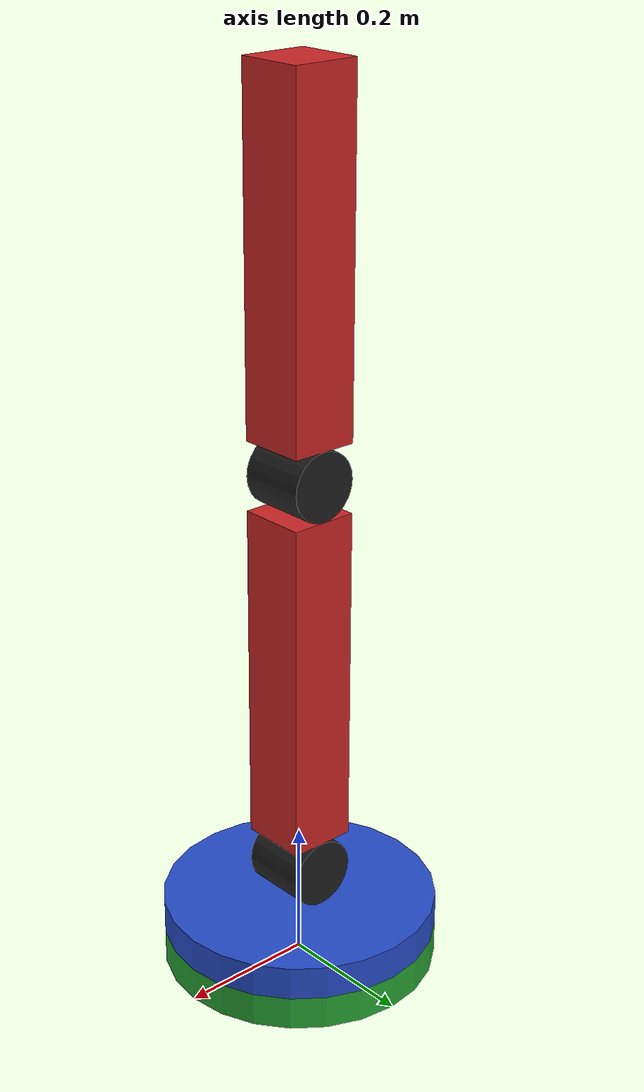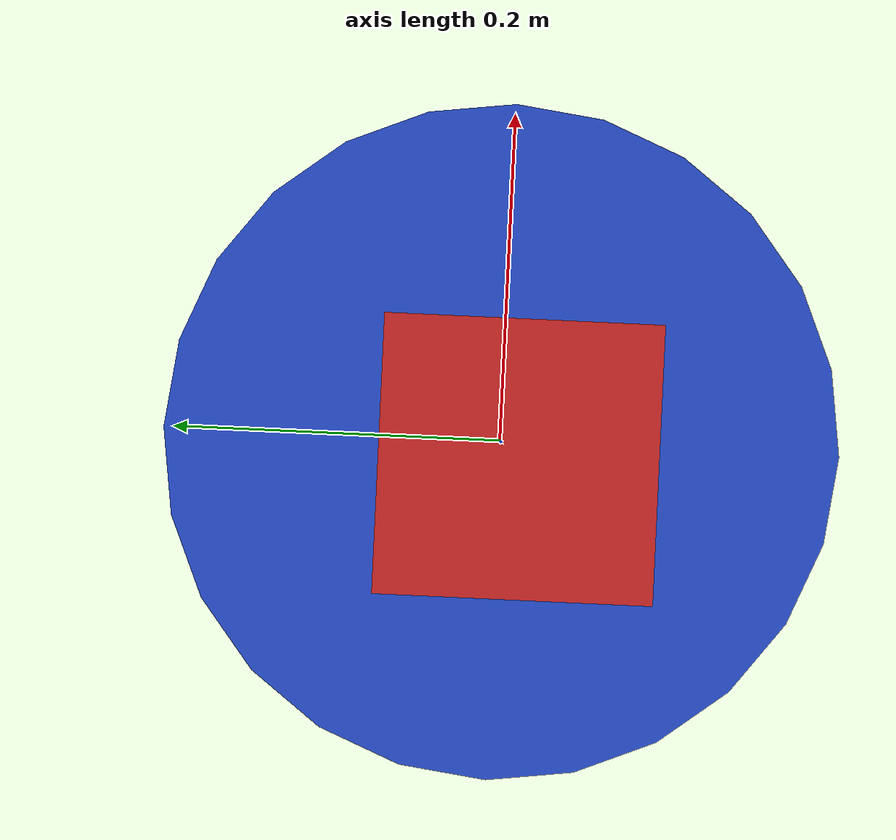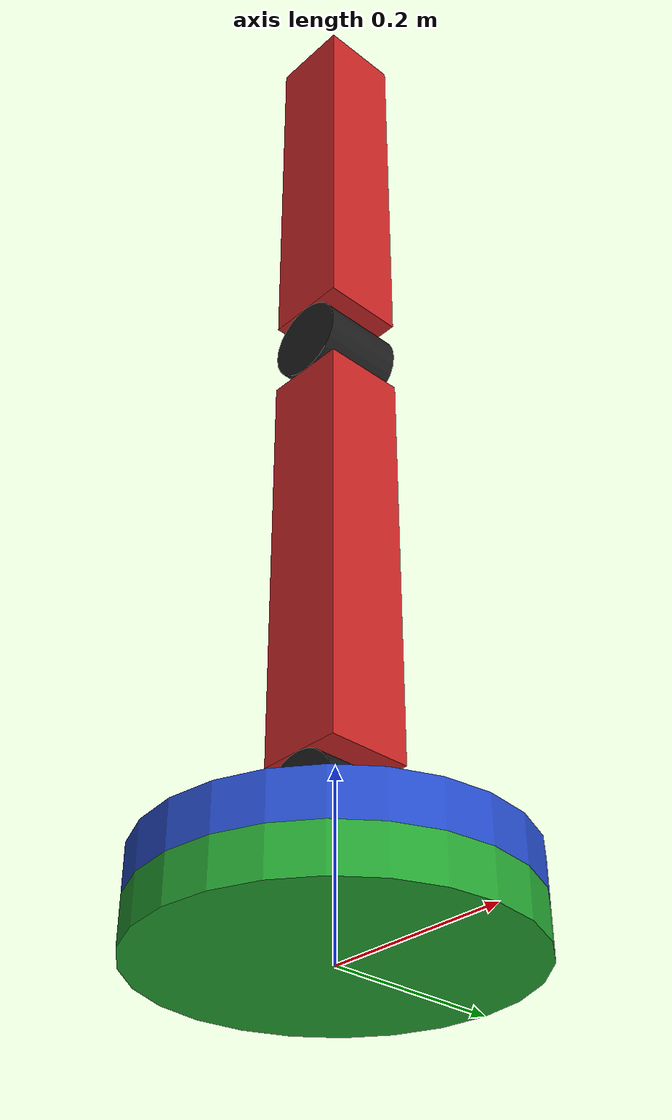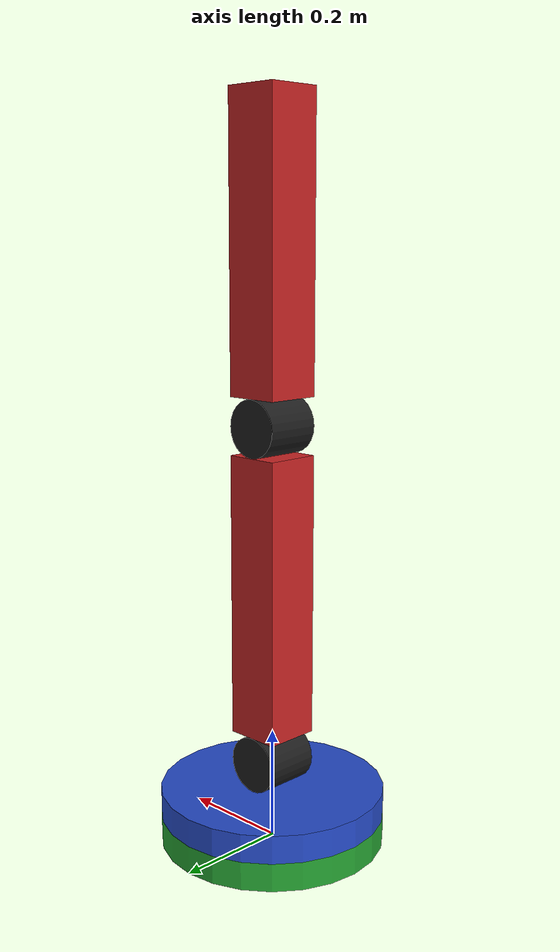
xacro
<?xml version="1.0"?>

<robot xmlns:xacro="http://www.ros.org/wiki/xacro" name="robo_arm">

    <xacro:include filename = "inertial_macros.xacro"/>

    <material name = "white">
        <color rgba = "1 1 1 1" />
    </material>

    <material name = "orange">
        <color rgba = "1 0.3 0.1 1" />
    </material>

    <material name = "blue">
        <color rgba = "0.2 0.2 1 1" />
    </material>

    <material name = "black">
        <color rgba = "0 0 0 1" />
    </material>

    <!-- Base Link -->
    <link name="base_link">
        <visual>
            <origin rpy="0 0 0" xyz="0 0 0.025"/>
            <geometry>
                <cylinder radius="0.2" length="0.05"/>
            </geometry>
        </visual>
        <collision>
            <origin rpy="0 0 0" xyz="0 0 0.025"/>
            <geometry>
                <cylinder radius="0.2" length="0.05"/>
            </geometry>
        </collision>
        <xacro:inertial_cylinder mass = "100" radius = "0.2" length = "0.05">
            <origin rpy="0 0 0" xyz="0 0 0.025"/>
        </xacro:inertial_cylinder>
    </link>

    <gazebo reference="base_link">
        <material>Gazebo/Green</material>
    </gazebo>

    <!-- Base Joint -->
    <joint name="base_joint" type="continuous">
        <origin xyz="0.0 0.0 0.05" rpy="0.0 0.0 0.0"/>
        <parent link="base_link"/>
        <child link="arm_base"/>
        <axis xyz="0.0 0.0 1"/>
        <limit effort="100000.0" velocity="0.25"/>
    </joint>

    <transmission name="base_transmission">
        <type>transmission_interface/SimpleTransmission</type>
        <actuator name="base_motor">
            <mechanicalReduction>1</mechanicalReduction>
        </actuator>
        <joint name="base_joint">
            <hardwareInterface>hardware_interface/VelocityJointInterface</hardwareInterface>
        </joint>
    </transmission>

    <!-- Base of arm -->
    <link name="arm_base">
        <visual>
            <origin rpy="0 0 0" xyz="0 0 0.025"/>
            <geometry>
                <cylinder radius="0.2" length="0.05"/>
            </geometry>
        </visual>
        <collision>
            <origin rpy="0 0 0" xyz="0 0 0.025"/>
            <geometry>
                <cylinder radius="0.2" length="0.05"/>
            </geometry>
        </collision>
        <xacro:inertial_cylinder mass = "0.1" radius = "0.2" length = "0.05">
            <origin rpy="0 0 0" xyz="0 0 0.025"/>
        </xacro:inertial_cylinder>
    </link>

    <gazebo reference="arm_base">
        <material>Gazebo/Blue</material>
    </gazebo>

    <!-- First revolute joint -->
    <joint name="r1_joint" type="continuous">
        <origin xyz="0.0 0.0 0.1" rpy="${pi/2} 0.0 0.0"/>
        <parent link="arm_base"/>
        <child link="actuator_1"/>
        <axis xyz="0.0 0.0 1"/>
        <limit effort="100000.0" velocity="0.25"/>
    </joint>

    <transmission name="r1_transmission">
        <type>transmission_interface/SimpleTransmission</type>
        <actuator name="r1_motor">
            <mechanicalReduction>1</mechanicalReduction>
        </actuator>
        <joint name="r1_joint">
            <hardwareInterface>hardware_interface/VelocityJointInterface</hardwareInterface>
        </joint>
    </transmission>

    <!-- First actuator -->
    <link name="actuator_1">
        <visual>
            <origin rpy="0 0 0" xyz="0 0 0"/>
            <geometry>
                <cylinder radius="0.05" length="0.1"/>
            </geometry>
        </visual>
        <collision>
            <origin rpy="0 0 0" xyz="0 0 0"/>
            <geometry>
                <cylinder radius="0.05" length="0.1"/>
            </geometry>
        </collision>
        <xacro:inertial_cylinder mass = "0.1" radius = "0.05" length = "0.1">
            <origin rpy="0 0 0" xyz="0 0 0"/>
        </xacro:inertial_cylinder>
    </link>

    <gazebo reference="actuator_1">
        <material>Gazebo/Black</material>
    </gazebo>

    <!-- First actuator-link joint -->
    <joint name="f1_joint" type="fixed">
        <parent link="actuator_1"/>
        <child link="link_1"/>
        <origin xyz="0.0 0.0 0.0" rpy="0.0 0.0 0.0"/>
    </joint>

    <!-- First link -->
    <link name="link_1">
        <visual>
            <origin rpy="0 0 0" xyz="0 0.3 0"/>
            <geometry>
                <box size="0.1 0.5 0.1"/>
            </geometry>
        </visual>
        <collision>
            <origin rpy="0 0 0" xyz="0 0.3 0"/>
            <geometry>
                <box size="0.1 0.5 0.1"/>
            </geometry>
        </collision>
        <xacro:inertial_box mass = "0.1" x = "0.1" y = "0.5" z = "0.1">
            <origin rpy="0 0 0" xyz="0 0.3 0"/>
        </xacro:inertial_box>
    </link>

    <gazebo reference="link_1">
        <material>Gazebo/Red</material>
    </gazebo>

    <!-- Second revolute joint -->
    <joint name="r2_joint" type="continuous">
        <origin xyz="0.0 0.6 0" rpy=".00 0.0 0.0"/>
        <parent link="link_1"/>
        <child link="actuator_2"/>
        <axis xyz="0.0 0.0 1"/>
        <limit effort="100000.0" velocity="0.25"/>
    </joint>

    <transmission name="r2_transmission">
        <type>transmission_interface/SimpleTransmission</type>
        <actuator name="r2_motor">
            <mechanicalReduction>1</mechanicalReduction>
        </actuator>
        <joint name="r2_joint">
            <hardwareInterface>hardware_interface/VelocityJointInterface</hardwareInterface>
        </joint>
    </transmission>

    <!-- Second actuator -->
    <link name="actuator_2">
        <visual>
            <origin rpy="0 0 0" xyz="0 0 0"/>
            <geometry>
                <cylinder radius="0.05" length="0.1"/>
            </geometry>
        </visual>
        <collision>
            <origin rpy="0 0 0" xyz="0 0 0"/>
            <geometry>
                <cylinder radius="0.05" length="0.1"/>
            </geometry>
        </collision>
        <xacro:inertial_cylinder mass = "0.1" radius = "0.05" length = "0.1">
            <origin rpy="0 0 0" xyz="0 0 0"/>
        </xacro:inertial_cylinder>
    </link>

    <gazebo reference="actuator_2">
        <material>Gazebo/Black</material>
    </gazebo>

    <!-- Second actuator-link joint -->
    <joint name="f2_joint" type="fixed">
        <parent link="actuator_2"/>
        <child link="link_2"/>
        <origin xyz="0.0 0.0 0.0" rpy="0.0 0.0 0.0"/>
    </joint>

    <!-- Second link -->
    <link name="link_2">
        <visual>
            <origin rpy="0 0 0" xyz="0 0.3 0"/>
            <geometry>
                <box size="0.1 0.5 0.1"/>
            </geometry>
        </visual>
        <collision>
            <origin rpy="0 0 0" xyz="0 0.3 0"/>
            <geometry>
                <box size="0.1 0.5 0.1"/>
            </geometry>
        </collision>
        <xacro:inertial_box mass = "0.1" x = "0.1" y = "0.5" z = "0.1">
            <origin rpy="0 0 0" xyz="0 0.3 0"/>
        </xacro:inertial_box>
    </link>

    <gazebo reference="link_2">
        <material>Gazebo/Red</material>
    </gazebo>

    <!-- Add ROS plugin so we can interact with our robot -->
    <gazebo>
        <plugin name="gazebo_ros_control" filename="libgazebo_ros_control.so">
            <robotNamespace>/</robotNamespace>
        </plugin>
    </gazebo>
</robot>
